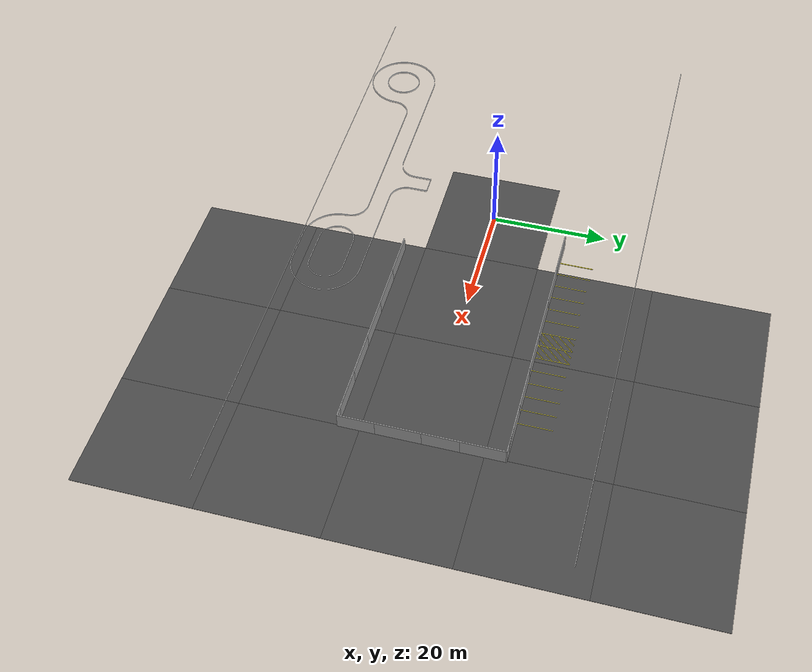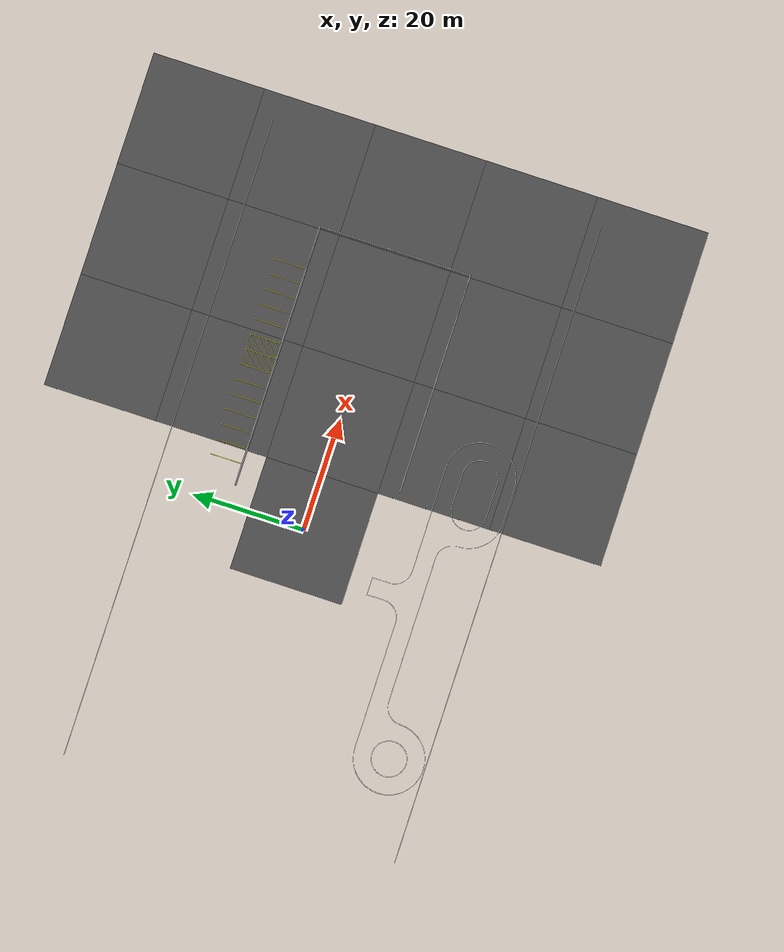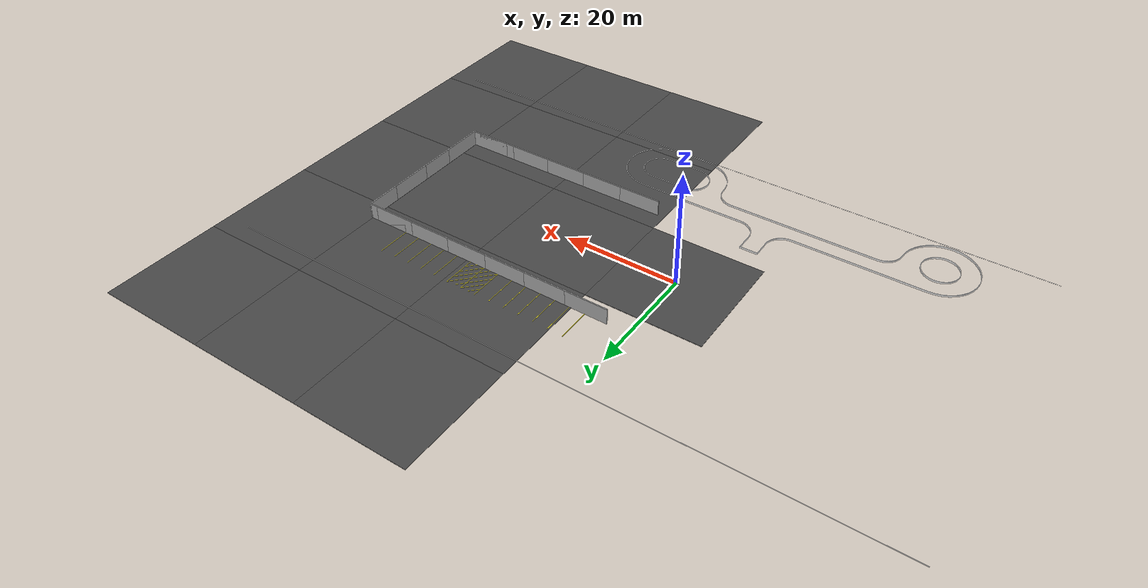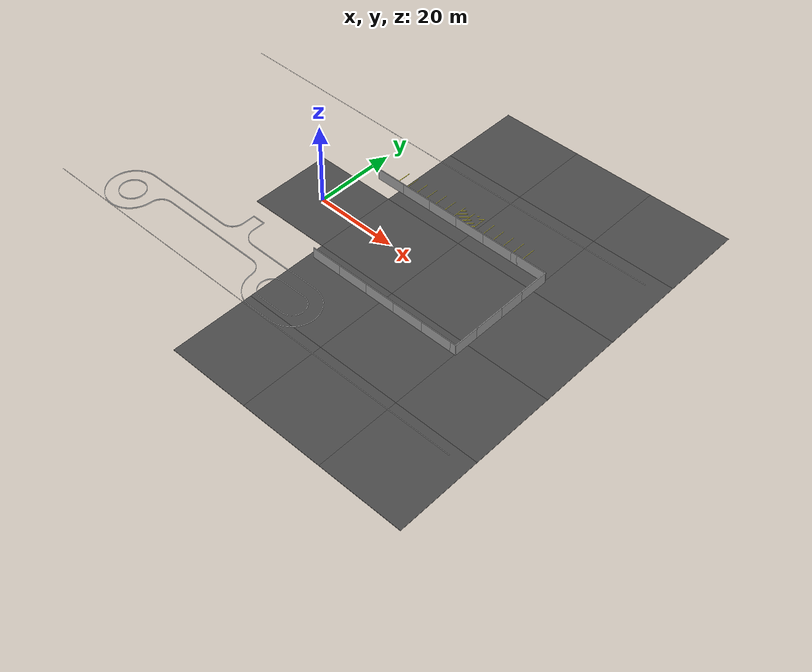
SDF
<sdf version="1.6">
 <world name="default">
  <model name="grey_wall_2">
   <static>1</static>
   <link name="link">
    <pose>0 0 1.4 0 -0 0</pose>
    <collision name="collision"><geometry><box><size>7.5 0.2 2.8</size></box></geometry></collision>
    <visual name="visual">
     <cast_shadows>0</cast_shadows>
     <geometry><box><size>7.5 0.2 2.8</size></box></geometry>
     <material>
      <script>
       <uri>model://grey_wall/materials/scripts</uri>
       <uri>model://grey_wall/materials/textures</uri>
       <name>vrc/grey_wall</name>
      </script>
     </material>
    </visual>
   </link>
   <pose>7.5 13.5 0 0 -0 0</pose>
  </model>
  <model name="grey_wall_5">
   <static>1</static>
   <link name="link">
    <pose>0 0 1.4 0 -0 0</pose>
    <collision name="collision"><geometry><box><size>7.5 0.2 2.8</size></box></geometry></collision>
    <visual name="visual">
     <cast_shadows>0</cast_shadows>
     <geometry><box><size>7.5 0.2 2.8</size></box></geometry>
     <material>
      <script>
       <uri>model://grey_wall/materials/scripts</uri>
       <uri>model://grey_wall/materials/textures</uri>
       <name>vrc/grey_wall</name>
      </script>
     </material>
    </visual>
   </link>
   <pose>30 -13.5 0 0 -0 0</pose>
  </model>
  <model name="grey_wall_6">
   <static>1</static>
   <link name="link">
    <pose>0 0 1.4 0 -0 0</pose>
    <collision name="collision"><geometry><box><size>7.5 0.2 2.8</size></box></geometry></collision>
    <visual name="visual">
     <cast_shadows>0</cast_shadows>
     <geometry><box><size>7.5 0.2 2.8</size></box></geometry>
     <material>
      <script>
       <uri>model://grey_wall/materials/scripts</uri>
       <uri>model://grey_wall/materials/textures</uri>
       <name>vrc/grey_wall</name>
      </script>
     </material>
    </visual>
   </link>
   <pose>15 -13.5 0 0 -0 0</pose>
  </model>
  <model name="grey_wall_7">
   <static>1</static>
   <link name="link">
    <pose>0 0 1.4 0 -0 0</pose>
    <collision name="collision"><geometry><box><size>7.5 0.2 2.8</size></box></geometry></collision>
    <visual name="visual">
     <cast_shadows>0</cast_shadows>
     <geometry><box><size>7.5 0.2 2.8</size></box></geometry>
     <material>
      <script>
       <uri>model://grey_wall/materials/scripts</uri>
       <uri>model://grey_wall/materials/textures</uri>
       <name>vrc/grey_wall</name>
      </script>
     </material>
    </visual>
   </link>
   <pose>22.5 -13.5 0 0 -0 0</pose>
  </model>
  <model name="grey_wall_11">
   <static>1</static>
   <link name="link">
    <pose>0 0 1.4 0 -0 0</pose>
    <collision name="collision"><geometry><box><size>7.5 0.2 2.8</size></box></geometry></collision>
    <visual name="visual">
     <cast_shadows>0</cast_shadows>
     <geometry><box><size>7.5 0.2 2.8</size></box></geometry>
     <material>
      <script>
       <uri>model://grey_wall/materials/scripts</uri>
       <uri>model://grey_wall/materials/textures</uri>
       <name>vrc/grey_wall</name>
      </script>
     </material>
    </visual>
   </link>
   <pose>15 13.5 0 0 -0 0</pose>
  </model>
  <model name="grey_wall_12">
   <static>1</static>
   <link name="link">
    <pose>0 0 1.4 0 -0 0</pose>
    <collision name="collision"><geometry><box><size>7.5 0.2 2.8</size></box></geometry></collision>
    <visual name="visual">
     <cast_shadows>0</cast_shadows>
     <geometry><box><size>7.5 0.2 2.8</size></box></geometry>
     <material>
      <script>
       <uri>model://grey_wall/materials/scripts</uri>
       <uri>model://grey_wall/materials/textures</uri>
       <name>vrc/grey_wall</name>
      </script>
     </material>
    </visual>
   </link>
   <pose>22.5 13.5 0 0 -0 0</pose>
  </model>
  <model name="grey_wall_13">
   <static>1</static>
   <link name="link">
    <pose>0 0 1.4 0 -0 0</pose>
    <collision name="collision"><geometry><box><size>7.5 0.2 2.8</size></box></geometry></collision>
    <visual name="visual">
     <cast_shadows>0</cast_shadows>
     <geometry><box><size>7.5 0.2 2.8</size></box></geometry>
     <material>
      <script>
       <uri>model://grey_wall/materials/scripts</uri>
       <uri>model://grey_wall/materials/textures</uri>
       <name>vrc/grey_wall</name>
      </script>
     </material>
    </visual>
   </link>
   <pose>30 13.5 0 0 -0 0</pose>
  </model>
  <model name="grey_wall_17">
   <static>1</static>
   <link name="link">
    <pose>0 0 1.4 0 -0 0</pose>
    <collision name="collision"><geometry><box><size>7.5 0.2 2.8</size></box></geometry></collision>
    <visual name="visual">
     <cast_shadows>0</cast_shadows>
     <geometry><box><size>7.5 0.2 2.8</size></box></geometry>
     <material>
      <script>
       <uri>model://grey_wall/materials/scripts</uri>
       <uri>model://grey_wall/materials/textures</uri>
       <name>vrc/grey_wall</name>
      </script>
     </material>
    </visual>
   </link>
   <pose>50.15 -9.85 0 0 -0 1.5708</pose>
  </model>
  <model name="grey_wall_18">
   <static>1</static>
   <link name="link">
    <pose>0 0 1.4 0 -0 0</pose>
    <collision name="collision"><geometry><box><size>7.5 0.2 2.8</size></box></geometry></collision>
    <visual name="visual">
     <cast_shadows>0</cast_shadows>
     <geometry><box><size>7.5 0.2 2.8</size></box></geometry>
     <material>
      <script>
       <uri>model://grey_wall/materials/scripts</uri>
       <uri>model://grey_wall/materials/textures</uri>
       <name>vrc/grey_wall</name>
      </script>
     </material>
    </visual>
   </link>
   <pose>50.15 9.85 0 0 -0 1.5708</pose>
  </model>
  <model name="grey_wall_19">
   <static>1</static>
   <link name="link">
    <pose>0 0 1.4 0 -0 0</pose>
    <collision name="collision"><geometry><box><size>7.5 0.2 2.8</size></box></geometry></collision>
    <visual name="visual">
     <cast_shadows>0</cast_shadows>
     <geometry><box><size>7.5 0.2 2.8</size></box></geometry>
     <material>
      <script>
       <uri>model://grey_wall/materials/scripts</uri>
       <uri>model://grey_wall/materials/textures</uri>
       <name>vrc/grey_wall</name>
      </script>
     </material>
    </visual>
   </link>
   <pose>50.15 -3.75 0 0 -0 1.5708</pose>
  </model>
  <model name="grey_wall_20">
   <static>1</static>
   <link name="link">
    <pose>0 0 1.4 0 -0 0</pose>
    <collision name="collision"><geometry><box><size>7.5 0.2 2.8</size></box></geometry></collision>
    <visual name="visual">
     <cast_shadows>0</cast_shadows>
     <geometry><box><size>7.5 0.2 2.8</size></box></geometry>
     <material>
      <script>
       <uri>model://grey_wall/materials/scripts</uri>
       <uri>model://grey_wall/materials/textures</uri>
       <name>vrc/grey_wall</name>
      </script>
     </material>
    </visual>
   </link>
   <pose>50.15 3.75 0 0 -0 1.5708</pose>
  </model>
  <model name="asphalt_plane">
   <static>1</static>
   <link name="link">
    <collision name="collision"><geometry><box><size>20 20 0.1</size></box></geometry></collision>
    <visual name="visual">
     <cast_shadows>0</cast_shadows>
     <geometry><box><size>20 20 0.1</size></box></geometry>
     <material>
      <script>
       <uri>model://asphalt_plane/materials/scripts</uri>
       <uri>model://asphalt_plane/materials/textures</uri>
       <name>vrc/asphalt</name>
      </script>
     </material>
    </visual>
   </link>
  </model>
  <model name="asphalt_plane_2">
   <static>1</static>
   <link name="link">
    <collision name="collision"><geometry><box><size>20 20 0.1</size></box></geometry></collision>
    <visual name="visual">
     <cast_shadows>0</cast_shadows>
     <geometry><box><size>20 20 0.1</size></box></geometry>
     <material>
      <script>
       <uri>model://asphalt_plane/materials/scripts</uri>
       <uri>model://asphalt_plane/materials/textures</uri>
       <name>vrc/asphalt</name>
      </script>
     </material>
    </visual>
   </link>
   <pose>20 0 0 0 -0 0</pose>
  </model>
  <model name="asphalt_plane_3">
   <static>1</static>
   <link name="link">
    <collision name="collision"><geometry><box><size>20 20 0.1</size></box></geometry></collision>
    <visual name="visual">
     <cast_shadows>0</cast_shadows>
     <geometry><box><size>20 20 0.1</size></box></geometry>
     <material>
      <script>
       <uri>model://asphalt_plane/materials/scripts</uri>
       <uri>model://asphalt_plane/materials/textures</uri>
       <name>vrc/asphalt</name>
      </script>
     </material>
    </visual>
   </link>
   <pose>40 0 0 0 -0 0</pose>
  </model>
  <model name="asphalt_plane_7">
   <static>1</static>
   <link name="link">
    <collision name="collision"><geometry><box><size>20 20 0.1</size></box></geometry></collision>
    <visual name="visual">
     <cast_shadows>0</cast_shadows>
     <geometry><box><size>20 20 0.1</size></box></geometry>
     <material>
      <script>
       <uri>model://asphalt_plane/materials/scripts</uri>
       <uri>model://asphalt_plane/materials/textures</uri>
       <name>vrc/asphalt</name>
      </script>
     </material>
    </visual>
   </link>
   <pose>20 -20 0 0 -0 0</pose>
  </model>
  <model name="asphalt_plane_8">
   <static>1</static>
   <link name="link">
    <collision name="collision"><geometry><box><size>20 20 0.1</size></box></geometry></collision>
    <visual name="visual">
     <cast_shadows>0</cast_shadows>
     <geometry><box><size>20 20 0.1</size></box></geometry>
     <material>
      <script>
       <uri>model://asphalt_plane/materials/scripts</uri>
       <uri>model://asphalt_plane/materials/textures</uri>
       <name>vrc/asphalt</name>
      </script>
     </material>
    </visual>
   </link>
   <pose>40 -20 0 0 -0 0</pose>
  </model>
  <model name="asphalt_plane_12">
   <static>1</static>
   <link name="link">
    <collision name="collision"><geometry><box><size>20 20 0.1</size></box></geometry></collision>
    <visual name="visual">
     <cast_shadows>0</cast_shadows>
     <geometry><box><size>20 20 0.1</size></box></geometry>
     <material>
      <script>
       <uri>model://asphalt_plane/materials/scripts</uri>
       <uri>model://asphalt_plane/materials/textures</uri>
       <name>vrc/asphalt</name>
      </script>
     </material>
    </visual>
   </link>
   <pose>20 20 0 0 -0 0</pose>
  </model>
  <model name="asphalt_plane_13">
   <static>1</static>
   <link name="link">
    <collision name="collision"><geometry><box><size>20 20 0.1</size></box></geometry></collision>
    <visual name="visual">
     <cast_shadows>0</cast_shadows>
     <geometry><box><size>20 20 0.1</size></box></geometry>
     <material>
      <script>
       <uri>model://asphalt_plane/materials/scripts</uri>
       <uri>model://asphalt_plane/materials/textures</uri>
       <name>vrc/asphalt</name>
      </script>
     </material>
    </visual>
   </link>
   <pose>40 20 0 0 -0 0</pose>
  </model>
  <model name="asphalt_plane_14">
   <static>1</static>
   <link name="link">
    <collision name="collision"><geometry><box><size>20 20 0.1</size></box></geometry></collision>
    <visual name="visual">
     <cast_shadows>0</cast_shadows>
     <geometry><box><size>20 20 0.1</size></box></geometry>
     <material>
      <script>
       <uri>model://asphalt_plane/materials/scripts</uri>
       <uri>model://asphalt_plane/materials/textures</uri>
       <name>vrc/asphalt</name>
      </script>
     </material>
    </visual>
   </link>
   <pose>60 0 0 0 -0 0</pose>
  </model>
  <model name="asphalt_plane_15">
   <static>1</static>
   <link name="link">
    <collision name="collision"><geometry><box><size>20 20 0.1</size></box></geometry></collision>
    <visual name="visual">
     <cast_shadows>0</cast_shadows>
     <geometry><box><size>20 20 0.1</size></box></geometry>
     <material>
      <script>
       <uri>model://asphalt_plane/materials/scripts</uri>
       <uri>model://asphalt_plane/materials/textures</uri>
       <name>vrc/asphalt</name>
      </script>
     </material>
    </visual>
   </link>
   <pose>60 20 0 0 -0 0</pose>
  </model>
  <model name="asphalt_plane_16">
   <static>1</static>
   <link name="link">
    <collision name="collision"><geometry><box><size>20 20 0.1</size></box></geometry></collision>
    <visual name="visual">
     <cast_shadows>0</cast_shadows>
     <geometry><box><size>20 20 0.1</size></box></geometry>
     <material>
      <script>
       <uri>model://asphalt_plane/materials/scripts</uri>
       <uri>model://asphalt_plane/materials/textures</uri>
       <name>vrc/asphalt</name>
      </script>
     </material>
    </visual>
   </link>
   <pose>60 -20 0 0 -0 0</pose>
  </model>
  <model name="asphalt_plane_17">
   <static>1</static>
   <link name="link">
    <collision name="collision"><geometry><box><size>20 20 0.1</size></box></geometry></collision>
    <visual name="visual">
     <cast_shadows>0</cast_shadows>
     <geometry><box><size>20 20 0.1</size></box></geometry>
     <material>
      <script>
       <uri>model://asphalt_plane/materials/scripts</uri>
       <uri>model://asphalt_plane/materials/textures</uri>
       <name>vrc/asphalt</name>
      </script>
     </material>
    </visual>
   </link>
   <pose>40 -40 0 0 -0 0</pose>
  </model>
  <model name="asphalt_plane_18">
   <static>1</static>
   <link name="link">
    <collision name="collision"><geometry><box><size>20 20 0.1</size></box></geometry></collision>
    <visual name="visual">
     <cast_shadows>0</cast_shadows>
     <geometry><box><size>20 20 0.1</size></box></geometry>
     <material>
      <script>
       <uri>model://asphalt_plane/materials/scripts</uri>
       <uri>model://asphalt_plane/materials/textures</uri>
       <name>vrc/asphalt</name>
      </script>
     </material>
    </visual>
   </link>
   <pose>60 -40 0 0 -0 0</pose>
  </model>
  <model name="asphalt_plane_19">
   <static>1</static>
   <link name="link">
    <collision name="collision"><geometry><box><size>20 20 0.1</size></box></geometry></collision>
    <visual name="visual">
     <cast_shadows>0</cast_shadows>
     <geometry><box><size>20 20 0.1</size></box></geometry>
     <material>
      <script>
       <uri>model://asphalt_plane/materials/scripts</uri>
       <uri>model://asphalt_plane/materials/textures</uri>
       <name>vrc/asphalt</name>
      </script>
     </material>
    </visual>
   </link>
   <pose>20 -40 0 0 -0 0</pose>
  </model>
  <model name="asphalt_plane_31">
   <static>1</static>
   <link name="link">
    <collision name="collision"><geometry><box><size>20 20 0.1</size></box></geometry></collision>
    <visual name="visual">
     <cast_shadows>0</cast_shadows>
     <geometry><box><size>20 20 0.1</size></box></geometry>
     <material>
      <script>
       <uri>model://asphalt_plane/materials/scripts</uri>
       <uri>model://asphalt_plane/materials/textures</uri>
       <name>vrc/asphalt</name>
      </script>
     </material>
    </visual>
   </link>
   <pose>20 40 0 0 -0 0</pose>
  </model>
  <model name="asphalt_plane_32">
   <static>1</static>
   <link name="link">
    <collision name="collision"><geometry><box><size>20 20 0.1</size></box></geometry></collision>
    <visual name="visual">
     <cast_shadows>0</cast_shadows>
     <geometry><box><size>20 20 0.1</size></box></geometry>
     <material>
      <script>
       <uri>model://asphalt_plane/materials/scripts</uri>
       <uri>model://asphalt_plane/materials/textures</uri>
       <name>vrc/asphalt</name>
      </script>
     </material>
    </visual>
   </link>
   <pose>40 40 0 0 -0 0</pose>
  </model>
  <model name="asphalt_plane_33">
   <static>1</static>
   <link name="link">
    <collision name="collision"><geometry><box><size>20 20 0.1</size></box></geometry></collision>
    <visual name="visual">
     <cast_shadows>0</cast_shadows>
     <geometry><box><size>20 20 0.1</size></box></geometry>
     <material>
      <script>
       <uri>model://asphalt_plane/materials/scripts</uri>
       <uri>model://asphalt_plane/materials/textures</uri>
       <name>vrc/asphalt</name>
      </script>
     </material>
    </visual>
   </link>
   <pose>60 40 0 0 -0 0</pose>
  </model>
  <model name="track_curb">
   <static>1</static>
   <link name="link">
    <inertial>
     <pose>0 0 1 0 -0 0</pose>
     <mass>5</mass>
     <inertia><ixx>0.833</ixx><iyy>0.833</iyy><izz>0.833</izz><ixy>0</ixy><ixz>0</ixz><iyz>0</iyz></inertia>
    </inertial>
    <collision name="collision">
     <pose>0 0 1 0 -0 0</pose>
     <geometry>
      <mesh><uri>model://track_curb/meshes/track.dae</uri><scale>0.3048 0.3048 0.3048</scale></mesh>
     </geometry>
    </collision>
    <visual name="visual">
     <pose>0 0 1 0 -0 0</pose>
     <geometry>
      <mesh><uri>model://track_curb/meshes/track.dae</uri><scale>0.3048 0.3048 0.3048</scale></mesh>
     </geometry>
     <material>
      <script>
       <uri>model://track_curb/materials/scripts</uri>
       <uri>model://track_curb/materials/textures/</uri>
       <name>white</name>
      </script>
     </material>
    </visual>
   </link>
   <pose>24 -32 -1.256 0 -0 3.14159</pose>
  </model>
  <model name="54m_redline">
   <static>1</static>
   <link name="link">
    <collision name="collision">
     <geometry><plane><normal>0 0 1</normal><size>59.3 0.1</size></plane></geometry>
     <surface><friction><ode><mu>100</mu><mu2>50</mu2></ode></friction></surface>
    </collision>
    <visual name="visual">
     <cast_shadows>0</cast_shadows>
     <geometry><plane><normal>0 0 1</normal><size>59.3 0.1</size></plane></geometry>
     <material>
      <script>
       <uri>model://54m_redline/materials/scripts</uri>
       <uri>model://54m_redline/materials/textures/</uri>
       <name>MyGroundPlane/Image</name>
      </script>
     </material>
    </visual>
   </link>
   <pose>65.3 -2.6 0.06 0 -0 1.5707</pose>
  </model>
  <model name="parking_line_13">
   <static>1</static>
   <link name="link">
    <inertial>
     <pose>0 0 1 0 -0 0</pose>
     <mass>5</mass>
     <inertia><ixx>0.833</ixx><iyy>0.833</iyy><izz>0.833</izz><ixy>0</ixy><ixz>0</ixz><iyz>0</iyz></inertia>
    </inertial>
    <collision name="collision">
     <pose>0 0 1 0 -0 0</pose>
     <geometry><mesh><uri>model://parking_line/meshes/parking_line.dae</uri><scale>1 1 1</scale></mesh></geometry>
    </collision>
    <visual name="visual">
     <pose>0 0 1 0 -0 0</pose>
     <geometry><mesh><uri>model://parking_line/meshes/parking_line.dae</uri><scale>1 1 1</scale></mesh></geometry>
     <material>
      <script>
       <uri>model://parking_line/materials/scripts</uri>
       <uri>model://parking_line/materials/textures/</uri>
       <name>yellow</name>
      </script>
     </material>
    </visual>
   </link>
   <pose>7.65 13.6 -1.049 0 -0 1.5707</pose>
  </model>
  <model name="parking_line_14">
   <static>1</static>
   <link name="link">
    <inertial>
     <pose>0 0 1 0 -0 0</pose>
     <mass>5</mass>
     <inertia><ixx>0.833</ixx><iyy>0.833</iyy><izz>0.833</izz><ixy>0</ixy><ixz>0</ixz><iyz>0</iyz></inertia>
    </inertial>
    <collision name="collision">
     <pose>0 0 1 0 -0 0</pose>
     <geometry><mesh><uri>model://parking_line/meshes/parking_line.dae</uri><scale>1 1 1</scale></mesh></geometry>
    </collision>
    <visual name="visual">
     <pose>0 0 1 0 -0 0</pose>
     <geometry><mesh><uri>model://parking_line/meshes/parking_line.dae</uri><scale>1 1 1</scale></mesh></geometry>
     <material>
      <script>
       <uri>model://parking_line/materials/scripts</uri>
       <uri>model://parking_line/materials/textures/</uri>
       <name>yellow</name>
      </script>
     </material>
    </visual>
   </link>
   <pose>10.35 13.6 -1.049 0 -0 1.5707</pose>
  </model>
  <model name="parking_line_15">
   <static>1</static>
   <link name="link">
    <inertial>
     <pose>0 0 1 0 -0 0</pose>
     <mass>5</mass>
     <inertia><ixx>0.833</ixx><iyy>0.833</iyy><izz>0.833</izz><ixy>0</ixy><ixz>0</ixz><iyz>0</iyz></inertia>
    </inertial>
    <collision name="collision">
     <pose>0 0 1 0 -0 0</pose>
     <geometry><mesh><uri>model://parking_line/meshes/parking_line.dae</uri><scale>1 1 1</scale></mesh></geometry>
    </collision>
    <visual name="visual">
     <pose>0 0 1 0 -0 0</pose>
     <geometry><mesh><uri>model://parking_line/meshes/parking_line.dae</uri><scale>1 1 1</scale></mesh></geometry>
     <material>
      <script>
       <uri>model://parking_line/materials/scripts</uri>
       <uri>model://parking_line/materials/textures/</uri>
       <name>yellow</name>
      </script>
     </material>
    </visual>
   </link>
   <pose>13.05 13.6 -1.049 0 -0 1.5707</pose>
  </model>
  <model name="parking_line_16">
   <static>1</static>
   <link name="link">
    <inertial>
     <pose>0 0 1 0 -0 0</pose>
     <mass>5</mass>
     <inertia><ixx>0.833</ixx><iyy>0.833</iyy><izz>0.833</izz><ixy>0</ixy><ixz>0</ixz><iyz>0</iyz></inertia>
    </inertial>
    <collision name="collision">
     <pose>0 0 1 0 -0 0</pose>
     <geometry><mesh><uri>model://parking_line/meshes/parking_line.dae</uri><scale>1 1 1</scale></mesh></geometry>
    </collision>
    <visual name="visual">
     <pose>0 0 1 0 -0 0</pose>
     <geometry><mesh><uri>model://parking_line/meshes/parking_line.dae</uri><scale>1 1 1</scale></mesh></geometry>
     <material>
      <script>
       <uri>model://parking_line/materials/scripts</uri>
       <uri>model://parking_line/materials/textures/</uri>
       <name>yellow</name>
      </script>
     </material>
    </visual>
   </link>
   <pose>15.75 13.6 -1.049 0 -0 1.5707</pose>
  </model>
  <model name="parking_line_17">
   <static>1</static>
   <link name="link">
    <inertial>
     <pose>0 0 1 0 -0 0</pose>
     <mass>5</mass>
     <inertia><ixx>0.833</ixx><iyy>0.833</iyy><izz>0.833</izz><ixy>0</ixy><ixz>0</ixz><iyz>0</iyz></inertia>
    </inertial>
    <collision name="collision">
     <pose>0 0 1 0 -0 0</pose>
     <geometry><mesh><uri>model://parking_line/meshes/parking_line.dae</uri><scale>1 1 1</scale></mesh></geometry>
    </collision>
    <visual name="visual">
     <pose>0 0 1 0 -0 0</pose>
     <geometry><mesh><uri>model://parking_line/meshes/parking_line.dae</uri><scale>1 1 1</scale></mesh></geometry>
     <material>
      <script>
       <uri>model://parking_line/materials/scripts</uri>
       <uri>model://parking_line/materials/textures/</uri>
       <name>yellow</name>
      </script>
     </material>
    </visual>
   </link>
   <pose>18.45 13.6 -1.049 0 -0 1.5707</pose>
  </model>
  <model name="parking_line_18">
   <static>1</static>
   <link name="link">
    <inertial>
     <pose>0 0 1 0 -0 0</pose>
     <mass>5</mass>
     <inertia><ixx>0.833</ixx><iyy>0.833</iyy><izz>0.833</izz><ixy>0</ixy><ixz>0</ixz><iyz>0</iyz></inertia>
    </inertial>
    <collision name="collision">
     <pose>0 0 1 0 -0 0</pose>
     <geometry><mesh><uri>model://parking_line/meshes/parking_line.dae</uri><scale>1 1 1</scale></mesh></geometry>
    </collision>
    <visual name="visual">
     <pose>0 0 1 0 -0 0</pose>
     <geometry><mesh><uri>model://parking_line/meshes/parking_line.dae</uri><scale>1 1 1</scale></mesh></geometry>
     <material>
      <script>
       <uri>model://parking_line/materials/scripts</uri>
       <uri>model://parking_line/materials/textures/</uri>
       <name>yellow</name>
      </script>
     </material>
    </visual>
   </link>
   <pose>21.15 13.6 -1.049 0 -0 1.5707</pose>
  </model>
  <model name="parking_line_19">
   <static>1</static>
   <link name="link">
    <inertial>
     <pose>0 0 1 0 -0 0</pose>
     <mass>5</mass>
     <inertia><ixx>0.833</ixx><iyy>0.833</iyy><izz>0.833</izz><ixy>0</ixy><ixz>0</ixz><iyz>0</iyz></inertia>
    </inertial>
    <collision name="collision">
     <pose>0 0 1 0 -0 0</pose>
     <geometry><mesh><uri>model://parking_line/meshes/parking_line.dae</uri><scale>1 1 1</scale></mesh></geometry>
    </collision>
    <visual name="visual">
     <pose>0 0 1 0 -0 0</pose>
     <geometry><mesh><uri>model://parking_line/meshes/parking_line.dae</uri><scale>1 1 1</scale></mesh></geometry>
     <material>
      <script>
       <uri>model://parking_line/materials/scripts</uri>
       <uri>model://parking_line/materials/textures/</uri>
       <name>yellow</name>
      </script>
     </material>
    </visual>
   </link>
   <pose>23.85 13.6 -1.049 0 -0 1.5707</pose>
  </model>
  <model name="parking_line_20">
   <static>1</static>
   <link name="link">
    <inertial>
     <pose>0 0 1 0 -0 0</pose>
     <mass>5</mass>
     <inertia><ixx>0.833</ixx><iyy>0.833</iyy><izz>0.833</izz><ixy>0</ixy><ixz>0</ixz><iyz>0</iyz></inertia>
    </inertial>
    <collision name="collision">
     <pose>0 0 1 0 -0 0</pose>
     <geometry><mesh><uri>model://parking_line/meshes/parking_line.dae</uri><scale>1 1 1</scale></mesh></geometry>
    </collision>
    <visual name="visual">
     <pose>0 0 1 0 -0 0</pose>
     <geometry><mesh><uri>model://parking_line/meshes/parking_line.dae</uri><scale>1 1 1</scale></mesh></geometry>
     <material>
      <script>
       <uri>model://parking_line/materials/scripts</uri>
       <uri>model://parking_line/materials/textures/</uri>
       <name>yellow</name>
      </script>
     </material>
    </visual>
   </link>
   <pose>26.55 13.6 -1.049 0 -0 1.5707</pose>
  </model>
  <model name="grey_wall_25">
   <static>1</static>
   <link name="link">
    <pose>0 0 1.4 0 -0 0</pose>
    <collision name="collision"><geometry><box><size>7.5 0.2 2.8</size></box></geometry></collision>
    <visual name="visual">
     <cast_shadows>0</cast_shadows>
     <geometry><box><size>7.5 0.2 2.8</size></box></geometry>
     <material>
      <script>
       <uri>model://grey_wall/materials/scripts</uri>
       <uri>model://grey_wall/materials/textures</uri>
       <name>vrc/grey_wall</name>
      </script>
     </material>
    </visual>
   </link>
   <pose>37.5 -13.5 0 0 -0 0</pose>
  </model>
  <model name="grey_wall_26">
   <static>1</static>
   <link name="link">
    <pose>0 0 1.4 0 -0 0</pose>
    <collision name="collision"><geometry><box><size>7.5 0.2 2.8</size></box></geometry></collision>
    <visual name="visual">
     <cast_shadows>0</cast_shadows>
     <geometry><box><size>7.5 0.2 2.8</size></box></geometry>
     <material>
      <script>
       <uri>model://grey_wall/materials/scripts</uri>
       <uri>model://grey_wall/materials/textures</uri>
       <name>vrc/grey_wall</name>
      </script>
     </material>
    </visual>
   </link>
   <pose>45 -13.5 0 0 -0 0</pose>
  </model>
  <model name="grey_wall_27">
   <static>1</static>
   <link name="link">
    <pose>0 0 1.4 0 -0 0</pose>
    <collision name="collision"><geometry><box><size>7.5 0.2 2.8</size></box></geometry></collision>
    <visual name="visual">
     <cast_shadows>0</cast_shadows>
     <geometry><box><size>7.5 0.2 2.8</size></box></geometry>
     <material>
      <script>
       <uri>model://grey_wall/materials/scripts</uri>
       <uri>model://grey_wall/materials/textures</uri>
       <name>vrc/grey_wall</name>
      </script>
     </material>
    </visual>
   </link>
   <pose>46.5 -13.5 0 0 -0 0</pose>
  </model>
  <model name="grey_wall_28">
   <static>1</static>
   <link name="link">
    <pose>0 0 1.4 0 -0 0</pose>
    <collision name="collision"><geometry><box><size>7.5 0.2 2.8</size></box></geometry></collision>
    <visual name="visual">
     <cast_shadows>0</cast_shadows>
     <geometry><box><size>7.5 0.2 2.8</size></box></geometry>
     <material>
      <script>
       <uri>model://grey_wall/materials/scripts</uri>
       <uri>model://grey_wall/materials/textures</uri>
       <name>vrc/grey_wall</name>
      </script>
     </material>
    </visual>
   </link>
   <pose>37.5 13.5 0 0 -0 0</pose>
  </model>
  <model name="grey_wall_29">
   <static>1</static>
   <link name="link">
    <pose>0 0 1.4 0 -0 0</pose>
    <collision name="collision"><geometry><box><size>7.5 0.2 2.8</size></box></geometry></collision>
    <visual name="visual">
     <cast_shadows>0</cast_shadows>
     <geometry><box><size>7.5 0.2 2.8</size></box></geometry>
     <material>
      <script>
       <uri>model://grey_wall/materials/scripts</uri>
       <uri>model://grey_wall/materials/textures</uri>
       <name>vrc/grey_wall</name>
      </script>
     </material>
    </visual>
   </link>
   <pose>45 13.5 0 0 -0 0</pose>
  </model>
  <model name="grey_wall_30">
   <static>1</static>
   <link name="link">
    <pose>0 0 1.4 0 -0 0</pose>
    <collision name="collision"><geometry><box><size>7.5 0.2 2.8</size></box></geometry></collision>
    <visual name="visual">
     <cast_shadows>0</cast_shadows>
     <geometry><box><size>7.5 0.2 2.8</size></box></geometry>
     <material>
      <script>
       <uri>model://grey_wall/materials/scripts</uri>
       <uri>model://grey_wall/materials/textures</uri>
       <name>vrc/grey_wall</name>
      </script>
     </material>
    </visual>
   </link>
   <pose>46.5 13.5 0 0 -0 0</pose>
  </model>
  <model name="parking_line_21">
   <static>1</static>
   <link name="link">
    <inertial>
     <pose>0 0 1 0 -0 0</pose>
     <mass>5</mass>
     <inertia><ixx>0.833</ixx><iyy>0.833</iyy><izz>0.833</izz><ixy>0</ixy><ixz>0</ixz><iyz>0</iyz></inertia>
    </inertial>
    <collision name="collision">
     <pose>0 0 1 0 -0 0</pose>
     <geometry><mesh><uri>model://parking_line/meshes/parking_line.dae</uri><scale>1 1 1</scale></mesh></geometry>
    </collision>
    <visual name="visual">
     <pose>0 0 1 0 -0 0</pose>
     <geometry><mesh><uri>model://parking_line/meshes/parking_line.dae</uri><scale>1 1 1</scale></mesh></geometry>
     <material>
      <script>
       <uri>model://parking_line/materials/scripts</uri>
       <uri>model://parking_line/materials/textures/</uri>
       <name>yellow</name>
      </script>
     </material>
    </visual>
   </link>
   <pose>29.25 13.6 -1.049 0 -0 1.5707</pose>
  </model>
  <model name="parking_line_22">
   <static>1</static>
   <link name="link">
    <inertial>
     <pose>0 0 1 0 -0 0</pose>
     <mass>5</mass>
     <inertia><ixx>0.833</ixx><iyy>0.833</iyy><izz>0.833</izz><ixy>0</ixy><ixz>0</ixz><iyz>0</iyz></inertia>
    </inertial>
    <collision name="collision">
     <pose>0 0 1 0 -0 0</pose>
     <geometry><mesh><uri>model://parking_line/meshes/parking_line.dae</uri><scale>1 1 1</scale></mesh></geometry>
    </collision>
    <visual name="visual">
     <pose>0 0 1 0 -0 0</pose>
     <geometry><mesh><uri>model://parking_line/meshes/parking_line.dae</uri><scale>1 1 1</scale></mesh></geometry>
     <material>
      <script>
       <uri>model://parking_line/materials/scripts</uri>
       <uri>model://parking_line/materials/textures/</uri>
       <name>yellow</name>
      </script>
     </material>
    </visual>
   </link>
   <pose>31.95 13.6 -1.049 0 -0 1.5707</pose>
  </model>
  <model name="parking_line_23">
   <static>1</static>
   <link name="link">
    <inertial>
     <pose>0 0 1 0 -0 0</pose>
     <mass>5</mass>
     <inertia><ixx>0.833</ixx><iyy>0.833</iyy><izz>0.833</izz><ixy>0</ixy><ixz>0</ixz><iyz>0</iyz></inertia>
    </inertial>
    <collision name="collision">
     <pose>0 0 1 0 -0 0</pose>
     <geometry><mesh><uri>model://parking_line/meshes/parking_line.dae</uri><scale>1 1 1</scale></mesh></geometry>
    </collision>
    <visual name="visual">
     <pose>0 0 1 0 -0 0</pose>
     <geometry><mesh><uri>model://parking_line/meshes/parking_line.dae</uri><scale>1 1 1</scale></mesh></geometry>
     <material>
      <script>
       <uri>model://parking_line/materials/scripts</uri>
       <uri>model://parking_line/materials/textures/</uri>
       <name>yellow</name>
      </script>
     </material>
    </visual>
   </link>
   <pose>34.65 13.6 -1.049 0 -0 1.5707</pose>
  </model>
  <model name="parking_line_24">
   <static>1</static>
   <link name="link">
    <inertial>
     <pose>0 0 1 0 -0 0</pose>
     <mass>5</mass>
     <inertia><ixx>0.833</ixx><iyy>0.833</iyy><izz>0.833</izz><ixy>0</ixy><ixz>0</ixz><iyz>0</iyz></inertia>
    </inertial>
    <collision name="collision">
     <pose>0 0 1 0 -0 0</pose>
     <geometry><mesh><uri>model://parking_line/meshes/parking_line.dae</uri><scale>1 1 1</scale></mesh></geometry>
    </collision>
    <visual name="visual">
     <pose>0 0 1 0 -0 0</pose>
     <geometry><mesh><uri>model://parking_line/meshes/parking_line.dae</uri><scale>1 1 1</scale></mesh></geometry>
     <material>
      <script>
       <uri>model://parking_line/materials/scripts</uri>
       <uri>model://parking_line/materials/textures/</uri>
       <name>yellow</name>
      </script>
     </material>
    </visual>
   </link>
   <pose>37.35 13.6 -1.049 0 -0 1.5707</pose>
  </model>
  <model name="parking_line_25">
   <static>1</static>
   <link name="link">
    <inertial>
     <pose>0 0 1 0 -0 0</pose>
     <mass>5</mass>
     <inertia><ixx>0.833</ixx><iyy>0.833</iyy><izz>0.833</izz><ixy>0</ixy><ixz>0</ixz><iyz>0</iyz></inertia>
    </inertial>
    <collision name="collision">
     <pose>0 0 1 0 -0 0</pose>
     <geometry><mesh><uri>model://parking_line/meshes/parking_line.dae</uri><scale>1 1 1</scale></mesh></geometry>
    </collision>
    <visual name="visual">
     <pose>0 0 1 0 -0 0</pose>
     <geometry><mesh><uri>model://parking_line/meshes/parking_line.dae</uri><scale>1 1 1</scale></mesh></geometry>
     <material>
      <script>
       <uri>model://parking_line/materials/scripts</uri>
       <uri>model://parking_line/materials/textures/</uri>
       <name>yellow</name>
      </script>
     </material>
    </visual>
   </link>
   <pose>40.05 13.6 -1.049 0 -0 1.5707</pose>
  </model>
  <model name="parking_line_26">
   <static>1</static>
   <link name="link">
    <inertial>
     <pose>0 0 1 0 -0 0</pose>
     <mass>5</mass>
     <inertia><ixx>0.833</ixx><iyy>0.833</iyy><izz>0.833</izz><ixy>0</ixy><ixz>0</ixz><iyz>0</iyz></inertia>
    </inertial>
    <collision name="collision">
     <pose>0 0 1 0 -0 0</pose>
     <geometry><mesh><uri>model://parking_line/meshes/parking_line.dae</uri><scale>1 1 1</scale></mesh></geometry>
    </collision>
    <visual name="visual">
     <pose>0 0 1 0 -0 0</pose>
     <geometry><mesh><uri>model://parking_line/meshes/parking_line.dae</uri><scale>1 1 1</scale></mesh></geometry>
     <material>
      <script>
       <uri>model://parking_line/materials/scripts</uri>
       <uri>model://parking_line/materials/textures/</uri>
       <name>yellow</name>
      </script>
     </material>
    </visual>
   </link>
   <pose>42.75 13.6 -1.049 0 -0 1.5707</pose>
  </model>
  <model name="92m_redline">
   <static>1</static>
   <link name="link">
    <collision name="collision">
     <geometry><plane><normal>0 0 1</normal><size>114.3 0.1</size></plane></geometry>
     <surface><friction><ode><mu>100</mu><mu2>50</mu2></ode></friction></surface>
    </collision>
    <visual name="visual">
     <cast_shadows>0</cast_shadows>
     <geometry><plane><normal>0 0 1</normal><size>114.3 0.1</size></plane></geometry>
     <material>
      <script>
       <uri>model://92m_redline/materials/scripts</uri>
       <uri>model://92m_redline/materials/textures/</uri>
       <name>MyGroundPlane/Image</name>
      </script>
     </material>
    </visual>
   </link>
   <pose>8.2 27 0.06 0 -0 0</pose>
  </model>
  <model name="92m_redline_0">
   <static>1</static>
   <link name="link">
    <collision name="collision">
     <geometry><plane><normal>0 0 1</normal><size>114.3 0.1</size></plane></geometry>
     <surface><friction><ode><mu>100</mu><mu2>50</mu2></ode></friction></surface>
    </collision>
    <visual name="visual">
     <cast_shadows>0</cast_shadows>
     <geometry><plane><normal>0 0 1</normal><size>114.3 0.1</size></plane></geometry>
     <material>
      <script>
       <uri>model://92m_redline/materials/scripts</uri>
       <uri>model://92m_redline/materials/textures/</uri>
       <name>MyGroundPlane/Image</name>
      </script>
     </material>
    </visual>
   </link>
   <pose>8.2 -32.2 0.06 0 -0 0</pose>
  </model>
  <model name="bars_0">
   <static>1</static>
   <link name="link">
    <inertial>
     <pose>0 0 1 0 -0 0</pose>
     <mass>5</mass>
     <inertia><ixx>0.833</ixx><iyy>0.833</iyy><izz>0.833</izz><ixy>0</ixy><ixz>0</ixz><iyz>0</iyz></inertia>
    </inertial>
    <collision name="collision">
     <pose>0 0 1 0 -0 0</pose>
     <geometry><mesh><uri>model://bars/meshes/bars.dae</uri><scale>1 1 1</scale></mesh></geometry>
    </collision>
    <visual name="visual">
     <pose>0 0 1 0 -0 0</pose>
     <geometry><mesh><uri>model://bars/meshes/bars.dae</uri><scale>1 1 1</scale></mesh></geometry>
     <material>
      <script>
       <uri>model://bars/materials/scripts</uri>
       <uri>model://bars/materials/textures/</uri>
       <name>yellow</name>
      </script>
     </material>
    </visual>
   </link>
   <pose>23.75 20.3 -0.04 1.5707 -0 0</pose>
  </model>
 </world>
</sdf>
